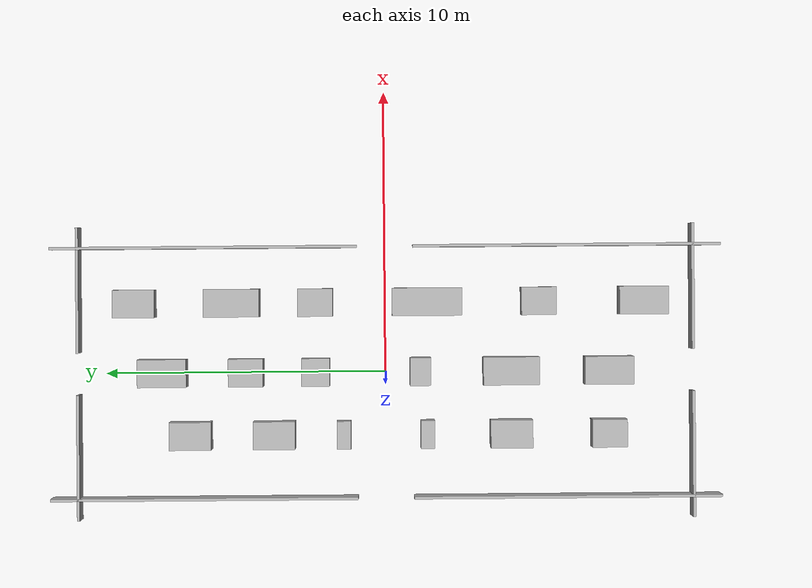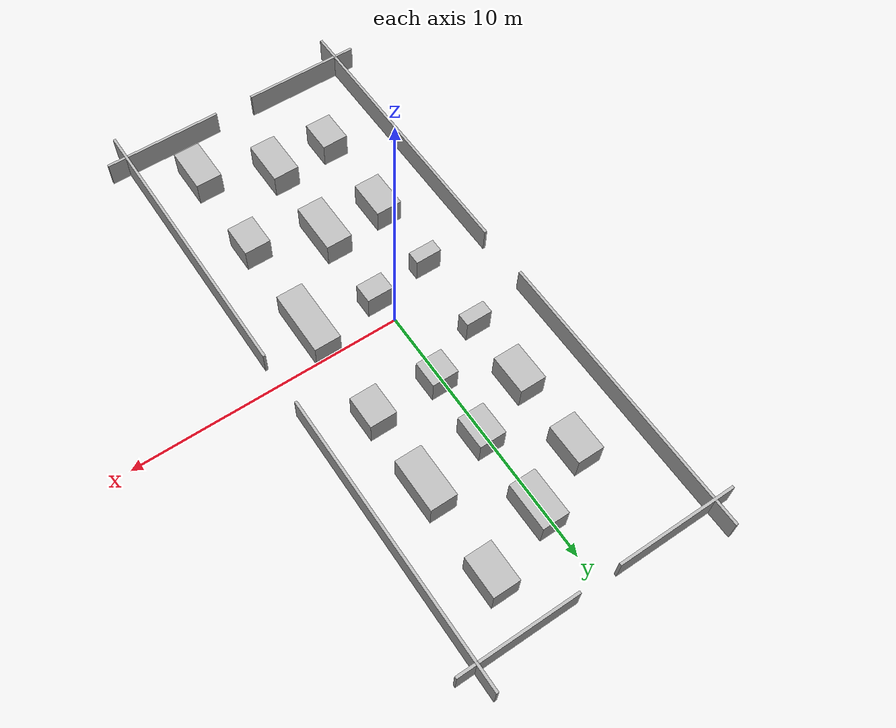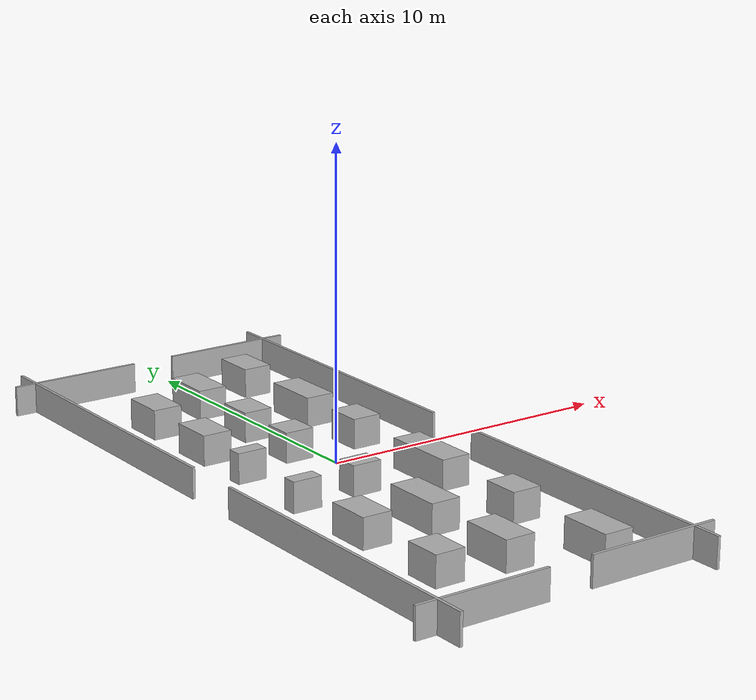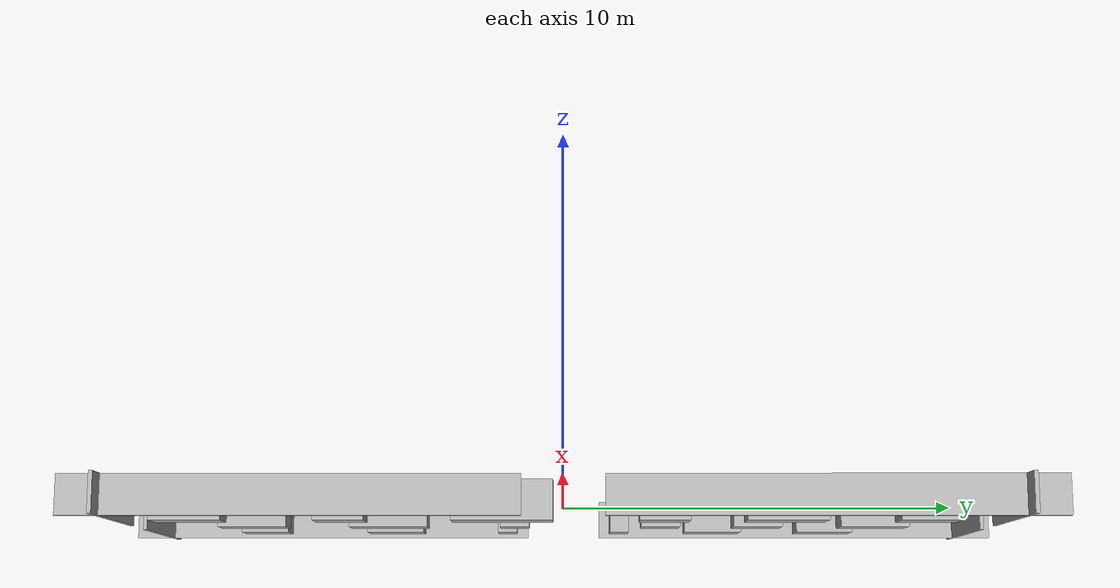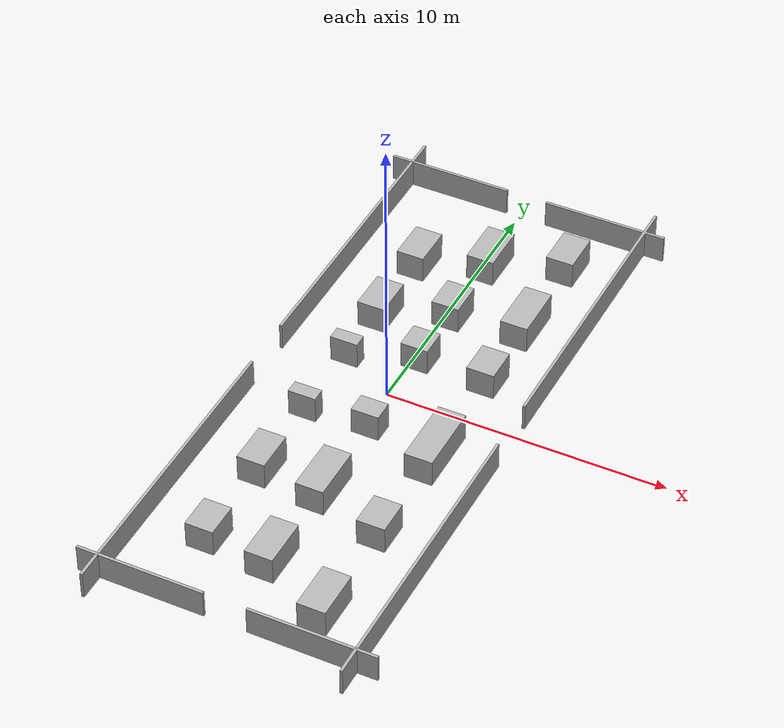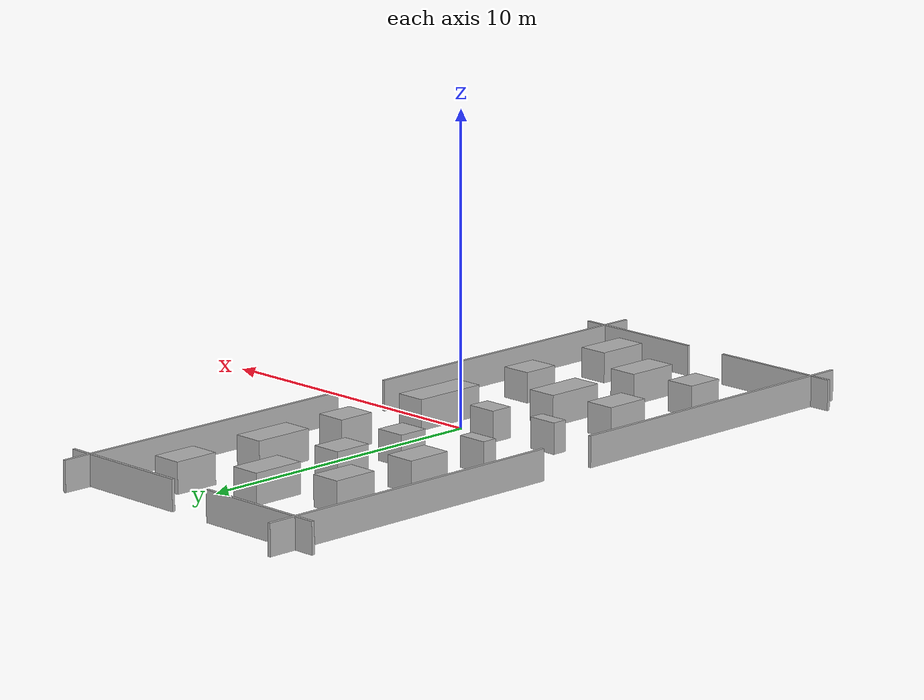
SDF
<?xml version="1.0" ?>
<sdf version="1.8">
  <!-- Section 0 -->
  <model name='section_0'>
    <link name='center_link'>
        <pose>0 0 0 0 0 0</pose>
    </link>
    <link name='barrier_up_left_link'>
      <pose>4.5 -6.5 0.0 0.0 0.0 0.0</pose>
      <inertial>
        <inertia>
          <ixx>0.16666</ixx>
          <ixy>0</ixy>
          <ixz>0</ixz>
          <iyy>0.16666</iyy>
          <iyz>0</iyz>
          <izz>0.16666</izz>
        </inertia>
        <mass>1</mass>
        <pose>0 0 0 0 0 0</pose>
      </inertial>
      <collision name='box_collision'>
        <geometry>
          <box>
            <size>0.1 11.0 1</size>
          </box>
        </geometry>
        <surface>
          <friction>
            <ode/>
          </friction>
          <bounce/>
          <contact/>
        </surface>
      </collision>
      <visual name='box_visual'>
        <geometry>
          <box>
            <size>0.1 11.0 1</size>
          </box>
        </geometry>
        <material>
          <ambient>0.300000012 0.300000012 0.300000012 1</ambient>
          <diffuse>0.699999988 0.699999988 0.699999988 1</diffuse>
          <specular>1 1 1 1</specular>
        </material>
      </visual>
      <pose>0 0 0 0 0 0</pose>
      <enable_wind>false</enable_wind>
    </link>

    <link name='barrier_up_right_link'>
      <pose>4.5 6.5 0.0 0.0 0.0 0.0</pose>
      <inertial>
        <inertia>
          <ixx>0.16666</ixx>
          <ixy>0</ixy>
          <ixz>0</ixz>
          <iyy>0.16666</iyy>
          <iyz>0</iyz>
          <izz>0.16666</izz>
        </inertia>
        <mass>1</mass>
        <pose>0 0 0 0 0 0</pose>
      </inertial>
      <collision name='box_collision'>
        <geometry>
          <box>
            <size>0.1 11.0 1</size>
          </box>
        </geometry>
        <surface>
          <friction>
            <ode/>
          </friction>
          <bounce/>
          <contact/>
        </surface>
      </collision>
      <visual name='box_visual'>
        <geometry>
          <box>
            <size>0.1 11.0 1</size>
          </box>
        </geometry>
        <material>
          <ambient>0.300000012 0.300000012 0.300000012 1</ambient>
          <diffuse>0.699999988 0.699999988 0.699999988 1</diffuse>
          <specular>1 1 1 1</specular>
        </material>
      </visual>
      <pose>0 0 0 0 0 0</pose>
      <enable_wind>false</enable_wind>
    </link>

    <link name='barrier_down_left_link'>
      <pose>-4.5 -6.5 0.0 0.0 0.0 0.0</pose>
      <inertial>
        <inertia>
          <ixx>0.16666</ixx>
          <ixy>0</ixy>
          <ixz>0</ixz>
          <iyy>0.16666</iyy>
          <iyz>0</iyz>
          <izz>0.16666</izz>
        </inertia>
        <mass>1</mass>
        <pose>0 0 0 0 0 0</pose>
      </inertial>
      <collision name='box_collision'>
        <geometry>
          <box>
            <size>0.1 11.0 1</size>
          </box>
        </geometry>
        <surface>
          <friction>
            <ode/>
          </friction>
          <bounce/>
          <contact/>
        </surface>
      </collision>
      <visual name='box_visual'>
        <geometry>
          <box>
            <size>0.1 11.0 1</size>
          </box>
        </geometry>
        <material>
          <ambient>0.300000012 0.300000012 0.300000012 1</ambient>
          <diffuse>0.699999988 0.699999988 0.699999988 1</diffuse>
          <specular>1 1 1 1</specular>
        </material>
      </visual>
      <pose>0 0 0 0 0 0</pose>
      <enable_wind>false</enable_wind>
    </link>

    <link name='barrier_down_right_link'>
      <pose>-4.5 6.5 0.0 0.0 0.0 0.0</pose>
      <inertial>
        <inertia>
          <ixx>0.16666</ixx>
          <ixy>0</ixy>
          <ixz>0</ixz>
          <iyy>0.16666</iyy>
          <iyz>0</iyz>
          <izz>0.16666</izz>
        </inertia>
        <mass>1</mass>
        <pose>0 0 0 0 0 0</pose>
      </inertial>
      <collision name='box_collision'>
        <geometry>
          <box>
            <size>0.1 11.0 1</size>
          </box>
        </geometry>
        <surface>
          <friction>
            <ode/>
          </friction>
          <bounce/>
          <contact/>
        </surface>
      </collision>
      <visual name='box_visual'>
        <geometry>
          <box>
            <size>0.1 11.0 1</size>
          </box>
        </geometry>
        <material>
          <ambient>0.300000012 0.300000012 0.300000012 1</ambient>
          <diffuse>0.699999988 0.699999988 0.699999988 1</diffuse>
          <specular>1 1 1 1</specular>
        </material>
      </visual>
      <pose>0 0 0 0 0 0</pose>
      <enable_wind>false</enable_wind>
    </link>

    <link name='barrier_left_up_link'>
      <pose>3.0 11.0 0.0 0.0 0.0 0.0</pose>
      <inertial>
        <inertia>
          <ixx>0.16666</ixx>
          <ixy>0</ixy>
          <ixz>0</ixz>
          <iyy>0.16666</iyy>
          <iyz>0</iyz>
          <izz>0.16666</izz>
        </inertia>
        <mass>1</mass>
        <pose>0 0 0 0 0 0</pose>
      </inertial>
      <collision name='box_collision'>
        <geometry>
          <box>
            <size>4.5 0.1 1</size>
          </box>
        </geometry>
        <surface>
          <friction>
            <ode/>
          </friction>
          <bounce/>
          <contact/>
        </surface>
      </collision>
      <visual name='box_visual'>
        <geometry>
          <box>
            <size>4.5 0.1 1</size>
          </box>
        </geometry>
        <material>
          <ambient>0.300000012 0.300000012 0.300000012 1</ambient>
          <diffuse>0.699999988 0.699999988 0.699999988 1</diffuse>
          <specular>1 1 1 1</specular>
        </material>
      </visual>
      <pose>0 0 0 0 0 0</pose>
      <enable_wind>false</enable_wind>
    </link>

    <link name='barrier_left_down_link'>
      <pose>-3.0 11.0 0.0 0.0 0.0 0.0</pose>
      <inertial>
        <inertia>
          <ixx>0.16666</ixx>
          <ixy>0</ixy>
          <ixz>0</ixz>
          <iyy>0.16666</iyy>
          <iyz>0</iyz>
          <izz>0.16666</izz>
        </inertia>
        <mass>1</mass>
        <pose>0 0 0 0 0 0</pose>
      </inertial>
      <collision name='box_collision'>
        <geometry>
          <box>
            <size>4.5 0.1 1</size>
          </box>
        </geometry>
        <surface>
          <friction>
            <ode/>
          </friction>
          <bounce/>
          <contact/>
        </surface>
      </collision>
      <visual name='box_visual'>
        <geometry>
          <box>
            <size>4.5 0.1 1</size>
          </box>
        </geometry>
        <material>
          <ambient>0.300000012 0.300000012 0.300000012 1</ambient>
          <diffuse>0.699999988 0.699999988 0.699999988 1</diffuse>
          <specular>1 1 1 1</specular>
        </material>
      </visual>
      <pose>0 0 0 0 0 0</pose>
      <enable_wind>false</enable_wind>
    </link>

    <link name='barrier_right_up_link'>
      <pose>3.0 -11.0 0.0 0.0 0.0 0.0</pose>
      <inertial>
        <inertia>
          <ixx>0.16666</ixx>
          <ixy>0</ixy>
          <ixz>0</ixz>
          <iyy>0.16666</iyy>
          <iyz>0</iyz>
          <izz>0.16666</izz>
        </inertia>
        <mass>1</mass>
        <pose>0 0 0 0 0 0</pose>
      </inertial>
      <collision name='box_collision'>
        <geometry>
          <box>
            <size>4.5 0.1 1</size>
          </box>
        </geometry>
        <surface>
          <friction>
            <ode/>
          </friction>
          <bounce/>
          <contact/>
        </surface>
      </collision>
      <visual name='box_visual'>
        <geometry>
          <box>
            <size>4.5 0.1 1</size>
          </box>
        </geometry>
        <material>
          <ambient>0.300000012 0.300000012 0.300000012 1</ambient>
          <diffuse>0.699999988 0.699999988 0.699999988 1</diffuse>
          <specular>1 1 1 1</specular>
        </material>
      </visual>
      <pose>0 0 0 0 0 0</pose>
      <enable_wind>false</enable_wind>
    </link>

    <link name='barrier_right_down_link'>
      <pose>-3.0 -11.0 0.0 0.0 0.0 0.0</pose>
      <inertial>
        <inertia>
          <ixx>0.16666</ixx>
          <ixy>0</ixy>
          <ixz>0</ixz>
          <iyy>0.16666</iyy>
          <iyz>0</iyz>
          <izz>0.16666</izz>
        </inertia>
        <mass>1</mass>
        <pose>0 0 0 0 0 0</pose>
      </inertial>
      <collision name='box_collision'>
        <geometry>
          <box>
            <size>4.5 0.1 1</size>
          </box>
        </geometry>
        <surface>
          <friction>
            <ode/>
          </friction>
          <bounce/>
          <contact/>
        </surface>
      </collision>
      <visual name='box_visual'>
        <geometry>
          <box>
            <size>4.5 0.1 1</size>
          </box>
        </geometry>
        <material>
          <ambient>0.300000012 0.300000012 0.300000012 1</ambient>
          <diffuse>0.699999988 0.699999988 0.699999988 1</diffuse>
          <specular>1 1 1 1</specular>
        </material>
      </visual>
      <pose>0 0 0 0 0 0</pose>
      <enable_wind>false</enable_wind>
    </link>

    <!-- barrier joint -->
    <!-- _barrier joint-->

    <link name='box_0_link'>
      <pose>0.0 2.5 0.0 0.0 0.0 0.0</pose>
      <inertial>
        <inertia>
          <ixx>0.16666</ixx>
          <ixy>0</ixy>
          <ixz>0</ixz>
          <iyy>0.16666</iyy>
          <iyz>0</iyz>
          <izz>0.16666</izz>
        </inertia>
        <mass>1</mass>
        <pose>0 0 0 0 0 0</pose>
      </inertial>
      <collision name='box_collision'>
        <geometry>
          <box>
            <size>1.0 1.0 1</size>
          </box>
        </geometry>
        <surface>
          <friction>
            <ode/>
          </friction>
          <bounce/>
          <contact/>
        </surface>
      </collision>
      <visual name='box_visual'>
        <geometry>
          <box>
            <size>1.0 1.0 1</size>
          </box>
        </geometry>
        <material>
          <ambient>0.300000012 0.300000012 0.300000012 1</ambient>
          <diffuse>0.699999988 0.699999988 0.699999988 1</diffuse>
          <specular>1 1 1 1</specular>
        </material>
      </visual>
      <pose>0 0 0 0 0 0</pose>
      <enable_wind>false</enable_wind>
    </link>

    <link name='box_1_link'>
      <pose>0.0 -1.25 0.0 0.0 0.0 0.0</pose>
      <inertial>
        <inertia>
          <ixx>0.16666</ixx>
          <ixy>0</ixy>
          <ixz>0</ixz>
          <iyy>0.16666</iyy>
          <iyz>0</iyz>
          <izz>0.16666</izz>
        </inertia>
        <mass>1</mass>
        <pose>0 0 0 0 0 0</pose>
      </inertial>
      <collision name='box_collision'>
        <geometry>
          <box>
            <size>1.0 0.75 1</size>
          </box>
        </geometry>
        <surface>
          <friction>
            <ode/>
          </friction>
          <bounce/>
          <contact/>
        </surface>
      </collision>
      <visual name='box_visual'>
        <geometry>
          <box>
            <size>1.0 0.75 1</size>
          </box>
        </geometry>
        <material>
          <ambient>0.300000012 0.300000012 0.300000012 1</ambient>
          <diffuse>0.699999988 0.699999988 0.699999988 1</diffuse>
          <specular>1 1 1 1</specular>
        </material>
      </visual>
      <pose>0 0 0 0 0 0</pose>
      <enable_wind>false</enable_wind>
    </link>

    <link name='box_0_1_link'>
      <pose>0.0 5.0 0.0 0.0 0.0 0.0</pose>
      <inertial>
        <inertia>
          <ixx>0.16666</ixx>
          <ixy>0</ixy>
          <ixz>0</ixz>
          <iyy>0.16666</iyy>
          <iyz>0</iyz>
          <izz>0.16666</izz>
        </inertia>
        <mass>1</mass>
        <pose>0 0 0 0 0 0</pose>
      </inertial>
      <collision name='box_collision'>
        <geometry>
          <box>
            <size>1.0 1.25 1</size>
          </box>
        </geometry>
        <surface>
          <friction>
            <ode/>
          </friction>
          <bounce/>
          <contact/>
        </surface>
      </collision>
      <visual name='box_visual'>
        <geometry>
          <box>
            <size>1.0 1.25 1</size>
          </box>
        </geometry>
        <material>
          <ambient>0.300000012 0.300000012 0.300000012 1</ambient>
          <diffuse>0.699999988 0.699999988 0.699999988 1</diffuse>
          <specular>1 1 1 1</specular>
        </material>
      </visual>
      <pose>0 0 0 0 0 0</pose>
      <enable_wind>false</enable_wind>
    </link>

    <link name='box_1_1_link'>
      <pose>0.0 -4.5 0.0 0.0 0.0 0.0</pose>
      <inertial>
        <inertia>
          <ixx>0.16666</ixx>
          <ixy>0</ixy>
          <ixz>0</ixz>
          <iyy>0.16666</iyy>
          <iyz>0</iyz>
          <izz>0.16666</izz>
        </inertia>
        <mass>1</mass>
        <pose>0 0 0 0 0 0</pose>
      </inertial>
      <collision name='box_collision'>
        <geometry>
          <box>
            <size>1.0 2.0 1</size>
          </box>
        </geometry>
        <surface>
          <friction>
            <ode/>
          </friction>
          <bounce/>
          <contact/>
        </surface>
      </collision>
      <visual name='box_visual'>
        <geometry>
          <box>
            <size>1.0 2.0 1</size>
          </box>
        </geometry>
        <material>
          <ambient>0.300000012 0.300000012 0.300000012 1</ambient>
          <diffuse>0.699999988 0.699999988 0.699999988 1</diffuse>
          <specular>1 1 1 1</specular>
        </material>
      </visual>
      <pose>0 0 0 0 0 0</pose>
      <enable_wind>false</enable_wind>
    </link>

    <link name='box_0_2_link'>
      <pose>0.0 8.0 0.0 0.0 0.0 0.0</pose>
      <inertial>
        <inertia>
          <ixx>0.16666</ixx>
          <ixy>0</ixy>
          <ixz>0</ixz>
          <iyy>0.16666</iyy>
          <iyz>0</iyz>
          <izz>0.16666</izz>
        </inertia>
        <mass>1</mass>
        <pose>0 0 0 0 0 0</pose>
      </inertial>
      <collision name='box_collision'>
        <geometry>
          <box>
            <size>1.0 1.75 1</size>
          </box>
        </geometry>
        <surface>
          <friction>
            <ode/>
          </friction>
          <bounce/>
          <contact/>
        </surface>
      </collision>
      <visual name='box_visual'>
        <geometry>
          <box>
            <size>1.0 1.75 1</size>
          </box>
        </geometry>
        <material>
          <ambient>0.300000012 0.300000012 0.300000012 1</ambient>
          <diffuse>0.699999988 0.699999988 0.699999988 1</diffuse>
          <specular>1 1 1 1</specular>
        </material>
      </visual>
      <pose>0 0 0 0 0 0</pose>
      <enable_wind>false</enable_wind>
    </link>

    <link name='box_1_2_link'>
      <pose>0.0 -8.0 0.0 0.0 0.0 0.0</pose>
      <inertial>
        <inertia>
          <ixx>0.16666</ixx>
          <ixy>0</ixy>
          <ixz>0</ixz>
          <iyy>0.16666</iyy>
          <iyz>0</iyz>
          <izz>0.16666</izz>
        </inertia>
        <mass>1</mass>
        <pose>0 0 0 0 0 0</pose>
      </inertial>
      <collision name='box_collision'>
        <geometry>
          <box>
            <size>1.0 1.75 1</size>
          </box>
        </geometry>
        <surface>
          <friction>
            <ode/>
          </friction>
          <bounce/>
          <contact/>
        </surface>
      </collision>
      <visual name='box_visual'>
        <geometry>
          <box>
            <size>1.0 1.75 1</size>
          </box>
        </geometry>
        <material>
          <ambient>0.300000012 0.300000012 0.300000012 1</ambient>
          <diffuse>0.699999988 0.699999988 0.699999988 1</diffuse>
          <specular>1 1 1 1</specular>
        </material>
      </visual>
      <pose>0 0 0 0 0 0</pose>
      <enable_wind>false</enable_wind>
    </link>

    <link name='box_2_link'>
      <pose>2.5 2.5 0.0 0.0 0.0 0.0</pose>
      <inertial>
        <inertia>
          <ixx>0.16666</ixx>
          <ixy>0</ixy>
          <ixz>0</ixz>
          <iyy>0.16666</iyy>
          <iyz>0</iyz>
          <izz>0.16666</izz>
        </inertia>
        <mass>1</mass>
        <pose>0 0 0 0 0 0</pose>
      </inertial>
      <collision name='box_collision'>
        <geometry>
          <box>
            <size>1.0 1.25 1</size>
          </box>
        </geometry>
        <surface>
          <friction>
            <ode/>
          </friction>
          <bounce/>
          <contact/>
        </surface>
      </collision>
      <visual name='box_visual'>
        <geometry>
          <box>
            <size>1.0 1.25 1</size>
          </box>
        </geometry>
        <material>
          <ambient>0.300000012 0.300000012 0.300000012 1</ambient>
          <diffuse>0.699999988 0.699999988 0.699999988 1</diffuse>
          <specular>1 1 1 1</specular>
        </material>
      </visual>
      <pose>0 0 0 0 0 0</pose>
      <enable_wind>false</enable_wind>
    </link>

    <link name='box_3_link'>
      <pose>2.5 -1.5 0.0 0.0 0.0 0.0</pose>
      <inertial>
        <inertia>
          <ixx>0.16666</ixx>
          <ixy>0</ixy>
          <ixz>0</ixz>
          <iyy>0.16666</iyy>
          <iyz>0</iyz>
          <izz>0.16666</izz>
        </inertia>
        <mass>1</mass>
        <pose>0 0 0 0 0 0</pose>
      </inertial>
      <collision name='box_collision'>
        <geometry>
          <box>
            <size>1.0 2.5 1</size>
          </box>
        </geometry>
        <surface>
          <friction>
            <ode/>
          </friction>
          <bounce/>
          <contact/>
        </surface>
      </collision>
      <visual name='box_visual'>
        <geometry>
          <box>
            <size>1.0 2.5 1</size>
          </box>
        </geometry>
        <material>
          <ambient>0.300000012 0.300000012 0.300000012 1</ambient>
          <diffuse>0.699999988 0.699999988 0.699999988 1</diffuse>
          <specular>1 1 1 1</specular>
        </material>
      </visual>
      <pose>0 0 0 0 0 0</pose>
      <enable_wind>false</enable_wind>
    </link>

    <link name='box_2_1_link'>
      <pose>2.5 5.5 0.0 0.0 0.0 0.0</pose>
      <inertial>
        <inertia>
          <ixx>0.16666</ixx>
          <ixy>0</ixy>
          <ixz>0</ixz>
          <iyy>0.16666</iyy>
          <iyz>0</iyz>
          <izz>0.16666</izz>
        </inertia>
        <mass>1</mass>
        <pose>0 0 0 0 0 0</pose>
      </inertial>
      <collision name='box_collision'>
        <geometry>
          <box>
            <size>1.0 2.0 1</size>
          </box>
        </geometry>
        <surface>
          <friction>
            <ode/>
          </friction>
          <bounce/>
          <contact/>
        </surface>
      </collision>
      <visual name='box_visual'>
        <geometry>
          <box>
            <size>1.0 2.0 1</size>
          </box>
        </geometry>
        <material>
          <ambient>0.300000012 0.300000012 0.300000012 1</ambient>
          <diffuse>0.699999988 0.699999988 0.699999988 1</diffuse>
          <specular>1 1 1 1</specular>
        </material>
      </visual>
      <pose>0 0 0 0 0 0</pose>
      <enable_wind>false</enable_wind>
    </link>

    <link name='box_3_1_link'>
      <pose>2.5 -5.5 0.0 0.0 0.0 0.0</pose>
      <inertial>
        <inertia>
          <ixx>0.16666</ixx>
          <ixy>0</ixy>
          <ixz>0</ixz>
          <iyy>0.16666</iyy>
          <iyz>0</iyz>
          <izz>0.16666</izz>
        </inertia>
        <mass>1</mass>
        <pose>0 0 0 0 0 0</pose>
      </inertial>
      <collision name='box_collision'>
        <geometry>
          <box>
            <size>1.0 1.25 1</size>
          </box>
        </geometry>
        <surface>
          <friction>
            <ode/>
          </friction>
          <bounce/>
          <contact/>
        </surface>
      </collision>
      <visual name='box_visual'>
        <geometry>
          <box>
            <size>1.0 1.25 1</size>
          </box>
        </geometry>
        <material>
          <ambient>0.300000012 0.300000012 0.300000012 1</ambient>
          <diffuse>0.699999988 0.699999988 0.699999988 1</diffuse>
          <specular>1 1 1 1</specular>
        </material>
      </visual>
      <pose>0 0 0 0 0 0</pose>
      <enable_wind>false</enable_wind>
    </link>

    <link name='box_2_2_link'>
      <pose>2.5 9.0 0.0 0.0 0.0 0.0</pose>
      <inertial>
        <inertia>
          <ixx>0.16666</ixx>
          <ixy>0</ixy>
          <ixz>0</ixz>
          <iyy>0.16666</iyy>
          <iyz>0</iyz>
          <izz>0.16666</izz>
        </inertia>
        <mass>1</mass>
        <pose>0 0 0 0 0 0</pose>
      </inertial>
      <collision name='box_collision'>
        <geometry>
          <box>
            <size>1.0 1.5 1</size>
          </box>
        </geometry>
        <surface>
          <friction>
            <ode/>
          </friction>
          <bounce/>
          <contact/>
        </surface>
      </collision>
      <visual name='box_visual'>
        <geometry>
          <box>
            <size>1.0 1.5 1</size>
          </box>
        </geometry>
        <material>
          <ambient>0.300000012 0.300000012 0.300000012 1</ambient>
          <diffuse>0.699999988 0.699999988 0.699999988 1</diffuse>
          <specular>1 1 1 1</specular>
        </material>
      </visual>
      <pose>0 0 0 0 0 0</pose>
      <enable_wind>false</enable_wind>
    </link>

    <link name='box_3_2_link'>
      <pose>2.5 -9.25 0.0 0.0 0.0 0.0</pose>
      <inertial>
        <inertia>
          <ixx>0.16666</ixx>
          <ixy>0</ixy>
          <ixz>0</ixz>
          <iyy>0.16666</iyy>
          <iyz>0</iyz>
          <izz>0.16666</izz>
        </inertia>
        <mass>1</mass>
        <pose>0 0 0 0 0 0</pose>
      </inertial>
      <collision name='box_collision'>
        <geometry>
          <box>
            <size>1.0 1.75 1</size>
          </box>
        </geometry>
        <surface>
          <friction>
            <ode/>
          </friction>
          <bounce/>
          <contact/>
        </surface>
      </collision>
      <visual name='box_visual'>
        <geometry>
          <box>
            <size>1.0 1.75 1</size>
          </box>
        </geometry>
        <material>
          <ambient>0.300000012 0.300000012 0.300000012 1</ambient>
          <diffuse>0.699999988 0.699999988 0.699999988 1</diffuse>
          <specular>1 1 1 1</specular>
        </material>
      </visual>
      <pose>0 0 0 0 0 0</pose>
      <enable_wind>false</enable_wind>
    </link>

    <link name='box_4_link'>
      <pose>-2.25 1.5 0.0 0.0 0.0 0.0</pose>
      <inertial>
        <inertia>
          <ixx>0.16666</ixx>
          <ixy>0</ixy>
          <ixz>0</ixz>
          <iyy>0.16666</iyy>
          <iyz>0</iyz>
          <izz>0.16666</izz>
        </inertia>
        <mass>1</mass>
        <pose>0 0 0 0 0 0</pose>
      </inertial>
      <collision name='box_collision'>
        <geometry>
          <box>
            <size>1.0 0.5 1</size>
          </box>
        </geometry>
        <surface>
          <friction>
            <ode/>
          </friction>
          <bounce/>
          <contact/>
        </surface>
      </collision>
      <visual name='box_visual'>
        <geometry>
          <box>
            <size>1.0 0.5 1</size>
          </box>
        </geometry>
        <material>
          <ambient>0.300000012 0.300000012 0.300000012 1</ambient>
          <diffuse>0.699999988 0.699999988 0.699999988 1</diffuse>
          <specular>1 1 1 1</specular>
        </material>
      </visual>
      <pose>0 0 0 0 0 0</pose>
      <enable_wind>false</enable_wind>
    </link>

    <link name='box_5_link'>
      <pose>-2.25 -1.5 0.0 0.0 0.0 0.0</pose>
      <inertial>
        <inertia>
          <ixx>0.16666</ixx>
          <ixy>0</ixy>
          <ixz>0</ixz>
          <iyy>0.16666</iyy>
          <iyz>0</iyz>
            <izz>0.16666</izz>
          </inertia>
          <mass>1</mass>
          <pose>0 0 0 0 0 0</pose>
        </inertial>
        <collision name='box_collision'>
          <geometry>
            <box>
              <size>1.0 0.5 1</size>
            </box>
          </geometry>
          <surface>
            <friction>
              <ode/>
            </friction>
            <bounce/>
            <contact/>
          </surface>
        </collision>
        <visual name='box_visual'>
          <geometry>
            <box>
              <size>1.0 0.5 1</size>
            </box>
          </geometry>
          <material>
            <ambient>0.300000012 0.300000012 0.300000012 1</ambient>
            <diffuse>0.699999988 0.699999988 0.699999988 1</diffuse>
            <specular>1 1 1 1</specular>
          </material>
        </visual>
        <pose>0 0 0 0 0 0</pose>
        <enable_wind>false</enable_wind>
    </link>

    <link name='box_4_1_link'>
      <pose>-2.25 -4.5 0.0 0.0 0.0 0.0</pose>
        <inertial>
          <inertia>
            <ixx>0.16666</ixx>
            <ixy>0</ixy>
            <ixz>0</ixz>
            <iyy>0.16666</iyy>
            <iyz>0</iyz>
            <izz>0.16666</izz>
          </inertia>
          <mass>1</mass>
          <pose>0 0 0 0 0 0</pose>
        </inertial>
        <collision name='box_collision'>
          <geometry>
            <box>
              <size>1.0 1.5 1</size>
            </box>
          </geometry>
          <surface>
            <friction>
              <ode/>
            </friction>
            <bounce/>
            <contact/>
          </surface>
        </collision>
        <visual name='box_visual'>
          <geometry>
            <box>
              <size>1.0 1.5 1</size>
            </box>
          </geometry>
          <material>
            <ambient>0.300000012 0.300000012 0.300000012 1</ambient>
            <diffuse>0.699999988 0.699999988 0.699999988 1</diffuse>
            <specular>1 1 1 1</specular>
          </material>
        </visual>
        <pose>0 0 0 0 0 0</pose>
        <enable_wind>false</enable_wind>
    </link>

    <link name='box_5_1_link'>
      <pose>-2.25 4.0 0.0 0.0 0.0 0.0</pose>
        <inertial>
          <inertia>
            <ixx>0.16666</ixx>
            <ixy>0</ixy>
            <ixz>0</ixz>
            <iyy>0.16666</iyy>
            <iyz>0</iyz>
            <izz>0.16666</izz>
          </inertia>
          <mass>1</mass>
          <pose>0 0 0 0 0 0</pose>
        </inertial>
        <collision name='box_collision'>
          <geometry>
            <box>
              <size>1.0 1.5 1</size>
            </box>
          </geometry>
          <surface>
            <friction>
              <ode/>
            </friction>
            <bounce/>
            <contact/>
          </surface>
        </collision>
        <visual name='box_visual'>
          <geometry>
            <box>
              <size>1.0 1.5 1</size>
            </box>
          </geometry>
          <material>
            <ambient>0.300000012 0.300000012 0.300000012 1</ambient>
            <diffuse>0.699999988 0.699999988 0.699999988 1</diffuse>
            <specular>1 1 1 1</specular>
          </material>
        </visual>
        <pose>0 0 0 0 0 0</pose>
        <enable_wind>false</enable_wind>
    </link>

    <link name='box_4_2_link'>
      <pose>-2.25 -8.0 0.0 0.0 0.0 0.0</pose>
        <inertial>
          <inertia>
            <ixx>0.16666</ixx>
            <ixy>0</ixy>
            <ixz>0</ixz>
            <iyy>0.16666</iyy>
            <iyz>0</iyz>
            <izz>0.16666</izz>
          </inertia>
          <mass>1</mass>
          <pose>0 0 0 0 0 0</pose>
        </inertial>
        <collision name='box_collision'>
          <geometry>
            <box>
              <size>1.0 1.25 1</size>
            </box>
          </geometry>
          <surface>
            <friction>
              <ode/>
            </friction>
            <bounce/>
            <contact/>
          </surface>
        </collision>
        <visual name='box_visual'>
          <geometry>
            <box>
              <size>1.0 1.25 1</size>
            </box>
          </geometry>
          <material>
            <ambient>0.300000012 0.300000012 0.300000012 1</ambient>
            <diffuse>0.699999988 0.699999988 0.699999988 1</diffuse>
            <specular>1 1 1 1</specular>
          </material>
        </visual>
        <pose>0 0 0 0 0 0</pose>
        <enable_wind>false</enable_wind>
    </link>

    <link name='box_5_2_link'>
      <pose>-2.25 7.0 0.0 0.0 0.0 0.0</pose>
        <inertial>
          <inertia>
            <ixx>0.16666</ixx>
            <ixy>0</ixy>
            <ixz>0</ixz>
            <iyy>0.16666</iyy>
            <iyz>0</iyz>
            <izz>0.16666</izz>
          </inertia>
          <mass>1</mass>
          <pose>0 0 0 0 0 0</pose>
        </inertial>
        <collision name='box_collision'>
          <geometry>
            <box>
              <size>1.0 1.5 1</size>
            </box>
          </geometry>
          <surface>
            <friction>
              <ode/>
            </friction>
            <bounce/>
            <contact/>
          </surface>
        </collision>
        <visual name='box_visual'>
          <geometry>
            <box>
              <size>1.0 1.5 1</size>
            </box>
          </geometry>
          <material>
            <ambient>0.300000012 0.300000012 0.300000012 1</ambient>
            <diffuse>0.699999988 0.699999988 0.699999988 1</diffuse>
            <specular>1 1 1 1</specular>
          </material>
        </visual>
        <pose>0 0 0 0 0 0</pose>
        <enable_wind>false</enable_wind>
    </link>
  </model>
    <!-- _Section 0 -->
</sdf>
